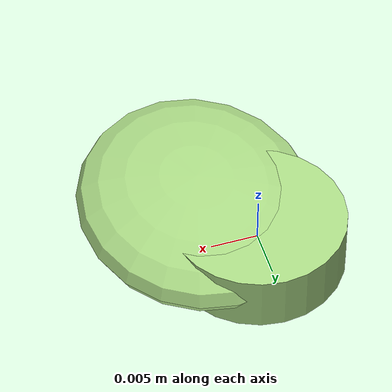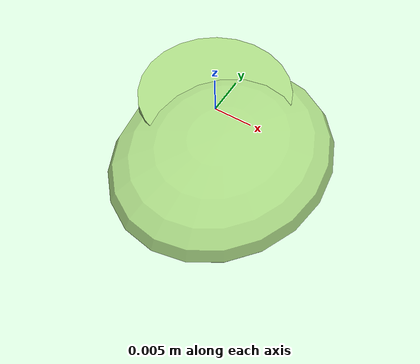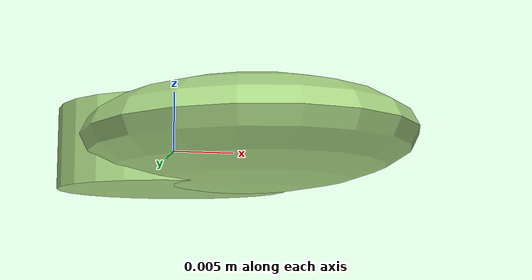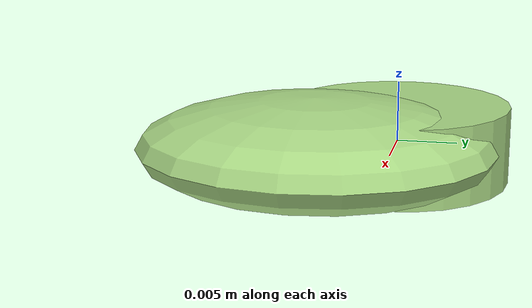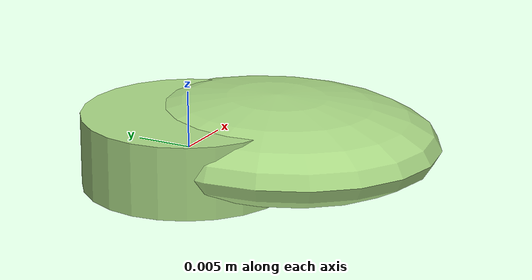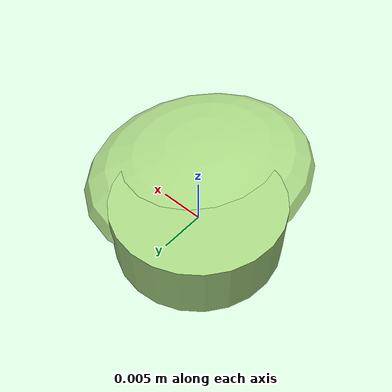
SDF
<?xml version="1.0" ?>
<!-- |    This document was autogenerated by xmacro from data/veggie_template/veggie_base.sdf.xacro  | -->
<!-- |    EDITING THIS FILE BY HAND IS NOT RECOMMENDED                                               | -->
<sdf version="1.8">
	<!-- Parameters -->
	<!-- Base -->
	<!-- Joint 0 -->
	<!-- Link 1 -->
	<!-- Joint 1 -->
	<!-- Link 2 -->
	<!-- Primitives -->
	<!-- All dimensions are half -->
	<!-- Object -->
	<model name="veggie">
		<!-- link0 -->
		<link name="link0">
			<inertial>
				<mass>0.001739645635587822</mass>
				<inertia>
					<ixx>4.353726070247025e-08</ixx>
					<ixy>0</ixy>
					<ixz>0</ixz>
					<iyy>4.353726070247025e-08</iyy>
					<iyz>0</iyz>
					<izz>7.517040516846542e-08</izz>
				</inertia>
			</inertial>
			<visual name="link0_visual">
				<pose>0 0 0 0 0 0</pose>
				<geometry>
					<cylinder>
						<radius>0.009296255414674973</radius>
						<length>0.006407576629258179</length>
					</cylinder>
				</geometry>
				<material>
					<ambient>0.659 0.839 0.514 1</ambient>
					<diffuse>0.659 0.839 0.514 1</diffuse>
					<specular>0 0 0 0</specular>
					<emissive>0 0 0 1</emissive>
				</material>
			</visual>
			<collision name="link0_collision">
				<pose>0 0 0 0 0 0 </pose>
				<geometry>
					<cylinder>
						<radius>0.009296255414674973</radius>
						<length>0.006407576629258179</length>
					</cylinder>
				</geometry>
			</collision>
		</link>
		<!-- link1 -->
		<joint name="joint0" type="fixed">
			<pose relative_to="link0">0.004748088718921871 -0.006111627245715339 0.00035337871104207234 0.0 0.0 0.0</pose>
			<parent>link0</parent>
			<child>link1</child>
		</joint>
		<link name="link1">
			<pose relative_to="joint0">0 0 0 0 0 0</pose>
			<inertial>
				<mass>0.003113170183820241</mass>
				<inertia>
					<ixx>1.4440466756506151e-07</ixx>
					<ixy>0</ixy>
					<ixz>0</ixz>
					<iyy>1.0847573616623407e-07</iyy>
					<iyz>0</iyz>
					<izz>2.3270162976489523e-07</izz>
				</inertia>
			</inertial>
			<visual name="link1_visual">
				<pose>0 0 0 0 0 0</pose>
				<geometry>
					<ellipsoid>
						<radii>0.012570454885947989 0.014687445997314676 0.004025464128600223</radii>
					</ellipsoid>
				</geometry>
				<material>
					<ambient>0.659 0.839 0.514 1</ambient>
					<diffuse>0.659 0.839 0.514 1</diffuse>
					<specular>0 0 0 0</specular>
					<emissive>0 0 0 1</emissive>
				</material>
			</visual>
			<collision name="link1_collision">
				<pose>0 0 0 0 0 0 </pose>
				<geometry>
					<ellipsoid>
						<radii>0.012570454885947989 0.014687445997314676 0.004025464128600223</radii>
					</ellipsoid>
				</geometry>
			</collision>
		</link>
		<!-- link2 -->
	</model>
</sdf>
